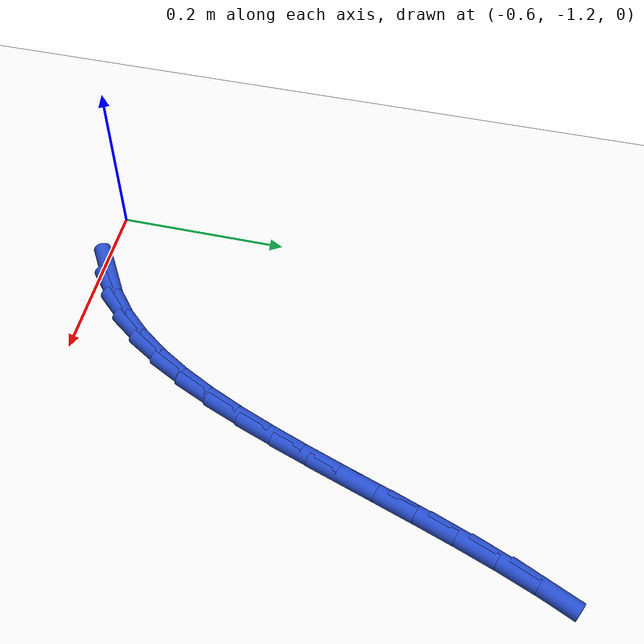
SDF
<sdf version="1.6">
 <world name="default">
  <model name="ground_plane">
   <static>1</static>
   <link name="link">
    <collision name="collision">
     <geometry><plane><normal>0 0 1</normal><size>100 100</size></plane></geometry>
     <surface><friction><ode><mu>100</mu><mu2>50</mu2></ode></friction></surface>
    </collision>
    <visual name="visual">
     <cast_shadows>0</cast_shadows>
     <geometry><plane><normal>0 0 1</normal><size>100 100</size></plane></geometry>
     <material>
      <script><uri>file://media/materials/scripts/gazebo.material</uri><name>Gazebo/WhiteGlow</name></script>
     </material>
    </visual>
   </link>
  </model>
  <model name="line">
   <link name="link_158">
    <pose>-0.5058676627103939 -1.18798966638618 0.01 0 1.57 0.5340233803476396</pose>
    <collision name="collision">
     <geometry><cylinder><radius>0.01</radius><length>0.08</length></cylinder></geometry>
    </collision>
    <visual name="visual">
     <material>
      <script><name>Gazebo/Blue</name><uri>file://media/materials/scripts/gazebo.material</uri></script>
     </material>
     <geometry><cylinder><radius>0.01</radius><length>0.08</length></cylinder></geometry>
    </visual>
   </link>
   <link name="link_159">
    <pose>-0.47676952784008797 -1.1707829378422667 0.01 0 1.57 0.6904858047259639</pose>
    <collision name="collision">
     <geometry><cylinder><radius>0.01</radius><length>0.08</length></cylinder></geometry>
    </collision>
    <visual name="visual">
     <material>
      <script><name>Gazebo/Blue</name><uri>file://media/materials/scripts/gazebo.material</uri></script>
     </material>
     <geometry><cylinder><radius>0.01</radius><length>0.08</length></cylinder></geometry>
    </visual>
   </link>
   <link name="link_160">
    <pose>-0.45039620583056794 -1.1489945345779595 0.01 0 1.57 0.8254662280686038</pose>
    <collision name="collision">
     <geometry><cylinder><radius>0.01</radius><length>0.08</length></cylinder></geometry>
    </collision>
    <visual name="visual">
     <material>
      <script><name>Gazebo/Blue</name><uri>file://media/materials/scripts/gazebo.material</uri></script>
     </material>
     <geometry><cylinder><radius>0.01</radius><length>0.08</length></cylinder></geometry>
    </visual>
   </link>
   <link name="link_161">
    <pose>-0.4264639341531598 -1.1230632571061714 0.01 0 1.57 0.9371069778248051</pose>
    <collision name="collision">
     <geometry><cylinder><radius>0.01</radius><length>0.08</length></cylinder></geometry>
    </collision>
    <visual name="visual">
     <material>
      <script><name>Gazebo/Blue</name><uri>file://media/materials/scripts/gazebo.material</uri></script>
     </material>
     <geometry><cylinder><radius>0.01</radius><length>0.08</length></cylinder></geometry>
    </visual>
   </link>
   <link name="link_162">
    <pose>-0.40468870337323953 -1.0934282479777162 0.01 0 1.57 1.0267542497846032</pose>
    <collision name="collision">
     <geometry><cylinder><radius>0.01</radius><length>0.08</length></cylinder></geometry>
    </collision>
    <visual name="visual">
     <material>
      <script><name>Gazebo/Blue</name><uri>file://media/materials/scripts/gazebo.material</uri></script>
     </material>
     <geometry><cylinder><radius>0.01</radius><length>0.08</length></cylinder></geometry>
    </visual>
   </link>
   <link name="link_163">
    <pose>-0.38478650405618325 -1.060528649743407 0.01 0 1.57 1.0971080905836637</pose>
    <collision name="collision">
     <geometry><cylinder><radius>0.01</radius><length>0.08</length></cylinder></geometry>
    </collision>
    <visual name="visual">
     <material>
      <script><name>Gazebo/Blue</name><uri>file://media/materials/scripts/gazebo.material</uri></script>
     </material>
     <geometry><cylinder><radius>0.01</radius><length>0.08</length></cylinder></geometry>
    </visual>
   </link>
   <link name="link_164">
    <pose>-0.3664733267673671 -1.0248036049540585 0.01 0 1.57 1.1510439353658783</pose>
    <collision name="collision">
     <geometry><cylinder><radius>0.01</radius><length>0.08</length></cylinder></geometry>
    </collision>
    <visual name="visual">
     <material>
      <script><name>Gazebo/Blue</name><uri>file://media/materials/scripts/gazebo.material</uri></script>
     </material>
     <geometry><cylinder><radius>0.01</radius><length>0.08</length></cylinder></geometry>
    </visual>
   </link>
   <link name="link_165">
    <pose>-0.3494651620721674 -0.9866922561604835 0.01 0 1.57 1.1910701417642031</pose>
    <collision name="collision">
     <geometry><cylinder><radius>0.01</radius><length>0.08</length></cylinder></geometry>
    </collision>
    <visual name="visual">
     <material>
      <script><name>Gazebo/Blue</name><uri>file://media/materials/scripts/gazebo.material</uri></script>
     </material>
     <geometry><cylinder><radius>0.01</radius><length>0.08</length></cylinder></geometry>
    </visual>
   </link>
   <link name="link_166">
    <pose>-0.3334780005359605 -0.9466337459134977 0.01 0 1.57 1.2191584144689898</pose>
    <collision name="collision">
     <geometry><cylinder><radius>0.01</radius><length>0.08</length></cylinder></geometry>
    </collision>
    <visual name="visual">
     <material>
      <script><name>Gazebo/Blue</name><uri>file://media/materials/scripts/gazebo.material</uri></script>
     </material>
     <geometry><cylinder><radius>0.01</radius><length>0.08</length></cylinder></geometry>
    </visual>
   </link>
   <link name="link_167">
    <pose>-0.3182278327241221 -0.9050672167639129 0.01 0 1.57 1.2367401341297442</pose>
    <collision name="collision">
     <geometry><cylinder><radius>0.01</radius><length>0.08</length></cylinder></geometry>
    </collision>
    <visual name="visual">
     <material>
      <script><name>Gazebo/Blue</name><uri>file://media/materials/scripts/gazebo.material</uri></script>
     </material>
     <geometry><cylinder><radius>0.01</radius><length>0.08</length></cylinder></geometry>
    </visual>
   </link>
   <link name="link_168">
    <pose>-0.30343064920202845 -0.8624318112625433 0.01 0 1.57 1.2447564264369186</pose>
    <collision name="collision">
     <geometry><cylinder><radius>0.01</radius><length>0.08</length></cylinder></geometry>
    </collision>
    <visual name="visual">
     <material>
      <script><name>Gazebo/Blue</name><uri>file://media/materials/scripts/gazebo.material</uri></script>
     </material>
     <geometry><cylinder><radius>0.01</radius><length>0.08</length></cylinder></geometry>
    </visual>
   </link>
   <link name="link_169">
    <pose>-0.2888024405350558 -0.8191666719602031 0.01 0 1.57 1.243711959930187</pose>
    <collision name="collision">
     <geometry><cylinder><radius>0.01</radius><length>0.08</length></cylinder></geometry>
    </collision>
    <visual name="visual">
     <material>
      <script><name>Gazebo/Blue</name><uri>file://media/materials/scripts/gazebo.material</uri></script>
     </material>
     <geometry><cylinder><radius>0.01</radius><length>0.08</length></cylinder></geometry>
    </visual>
   </link>
   <link name="link_170">
    <pose>-0.27405919728858036 -0.7757109414077057 0.01 0 1.57 1.2337138439863902</pose>
    <collision name="collision">
     <geometry><cylinder><radius>0.01</radius><length>0.08</length></cylinder></geometry>
    </collision>
    <visual name="visual">
     <material>
      <script><name>Gazebo/Blue</name><uri>file://media/materials/scripts/gazebo.material</uri></script>
     </material>
     <geometry><cylinder><radius>0.01</radius><length>0.08</length></cylinder></geometry>
    </visual>
   </link>
   <link name="link_171">
    <pose>-0.2589169100279782 -0.7325037621558653 0.01 0 1.57 1.2144912136070214</pose>
    <collision name="collision">
     <geometry><cylinder><radius>0.01</radius><length>0.08</length></cylinder></geometry>
    </collision>
    <visual name="visual">
     <material>
      <script><name>Gazebo/Blue</name><uri>file://media/materials/scripts/gazebo.material</uri></script>
     </material>
     <geometry><cylinder><radius>0.01</radius><length>0.08</length></cylinder></geometry>
    </visual>
   </link>
   <link name="link_172">
    <pose>-0.24309156931862597 -0.6899842767554966 0.01 0 1.57 1.1853981595779972</pose>
    <collision name="collision">
     <geometry><cylinder><radius>0.01</radius><length>0.08</length></cylinder></geometry>
    </collision>
    <visual name="visual">
     <material>
      <script><name>Gazebo/Blue</name><uri>file://media/materials/scripts/gazebo.material</uri></script>
     </material>
     <geometry><cylinder><radius>0.01</radius><length>0.08</length></cylinder></geometry>
    </visual>
   </link>
   <link name="link_173">
    <pose>-0.22629916572589895 -0.6485916277574111 0.01 0 1.57 1.1454196970596158</pose>
    <collision name="collision">
     <geometry><cylinder><radius>0.01</radius><length>0.08</length></cylinder></geometry>
    </collision>
    <visual name="visual">
     <material>
      <script><name>Gazebo/Blue</name><uri>file://media/materials/scripts/gazebo.material</uri></script>
     </material>
     <geometry><cylinder><radius>0.01</radius><length>0.08</length></cylinder></geometry>
    </visual>
   </link>
  </model>
 </world>
</sdf>
